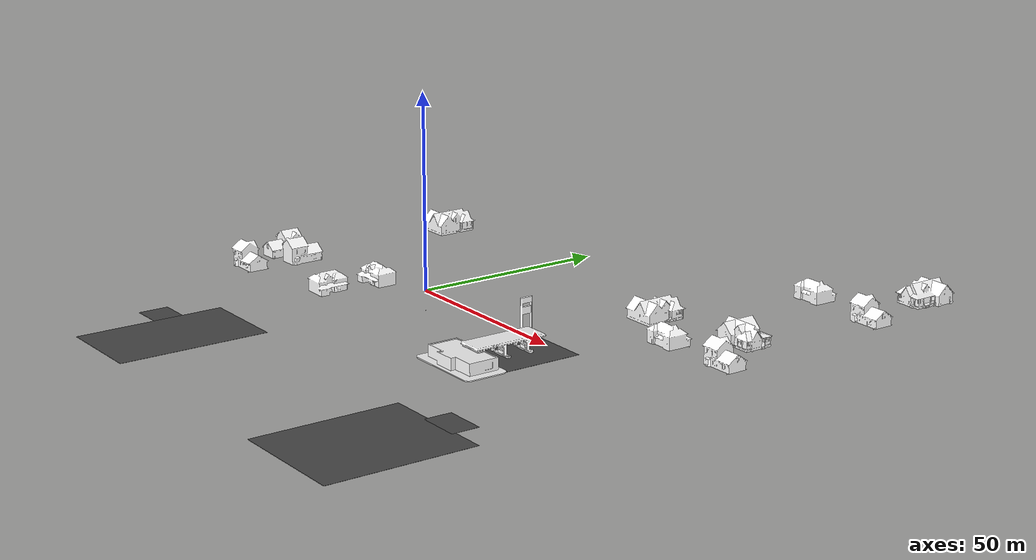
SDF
<sdf version="1.6">
 <world name="default">
  <plugin name="joy" filename="libJoyPlugin.so">
   <sticky_buttons>false</sticky_buttons>
   <dead_zone>0.05</dead_zone>
   <rate>60</rate>
   <accumulation_rate>1000</accumulation_rate>
  </plugin>
  <scene>
   <grid>false</grid>
   <origin_visual>false</origin_visual>
   <ambient>0.592 0.624 0.635 1</ambient>
   <sky><clouds><speed>12</speed></clouds></sky>
   <background>0.35 0.35 0.35 1.0</background>
  </scene>
  <physics name="default_physics" default="0" type="ode">
   <max_step_size>0.002</max_step_size>
   <real_time_factor>1</real_time_factor>
   <real_time_update_rate>0</real_time_update_rate>
  </physics>
  <spherical_coordinates>
   <surface_model>EARTH_WGS84</surface_model>
   <latitude_deg>0</latitude_deg>
   <longitude_deg>0</longitude_deg>
   <elevation>0</elevation>
   <heading_deg>0</heading_deg>
  </spherical_coordinates>
  <light type="directional" name="sun">
   <pose>0 0 1000 0 0 0</pose>
   <diffuse>0.8 0.8 0.8 1</diffuse>
   <specular>0.5 0.5 0.5 1</specular>
   <attenuation>
    <range>1000</range>
    <constant>0.9</constant>
    <linear>0.01</linear>
    <quadratic>0.001</quadratic>
   </attenuation>
   <direction>-0.5 0.1 -0.4</direction>
  </light>
  <model name="shaderbox">
   <pose>0 0 -5 0 0 0</pose>
   <static>true</static>
   <link name="link">
    <visual name="visual">
     <geometry><box><size>0.1 0.1 0.1</size></box></geometry>
     <material>
      <script><uri>file://media/materials/scripts/citysim.material</uri><name>CitySim/ShinyGrey</name></script>
     </material>
     <plugin name="bloom" filename="libBloomVisualPlugin.so"/>
     <plugin name="lensflare" filename="libLensFlareVisualPlugin.so"/>
    </visual>
   </link>
  </model>
  <include>
   <name>house_1_116</name>
   <pose>88.76
      81.72
      5.01
      0
      0
      1.57</pose>
   <uri>model://house_1</uri>
  </include>
  <include>
   <name>house_2_117</name>
   <pose>71.455
      61.92
      5.01
      0
      0
      0</pose>
   <uri>model://house_2</uri>
  </include>
  <include>
   <name>house_3_118</name>
   <pose>92.89
      60.76
      5.01
      0
      0
      0</pose>
   <uri>model://house_3</uri>
  </include>
  <include>
   <name>house_1_130</name>
   <pose>61.74
      22.76
      5.01
      0
      0
      -1.57</pose>
   <uri>model://house_1</uri>
  </include>
  <include>
   <name>house_1_131</name>
   <pose>86.62
      27.93
      5.01
      0
      0
      3.14</pose>
   <uri>model://house_1</uri>
  </include>
  <include>
   <name>house_3_132</name>
   <pose>96.43
      14.14
      5.01
      0
      0
      0</pose>
   <uri>model://house_3</uri>
  </include>
  <include>
   <name>house_2_135</name>
   <pose>76.71
      13.4
      5.01
      0
      0
      0</pose>
   <uri>model://house_2</uri>
  </include>
  <model name="gas_station_137">
   <static>true</static>
   <pose>61.88
    -30.82
    5.01
    0
    0
    3.14</pose>
   <link name="link">
    <collision name="collision">
     <geometry><mesh><uri>model://gas_station/meshes/gas_station.dae</uri></mesh></geometry>
    </collision>
    <visual name="visual">
     <geometry><mesh><uri>model://gas_station/meshes/gas_station.dae</uri></mesh></geometry>
     <material>
      <script>
       <uri>model://gas_station/materials/scripts</uri>
       <uri>model://gas_station/materials/textures</uri>
       <name>GasStation/Diffuse</name>
      </script>
      <ambient>1
          1
          1
          1</ambient>
     </material>
    </visual>
   </link>
  </model>
  <model name="asphalt_plane_138">
   <static>true</static>
   <pose>61.581
    -16.664
    5.01
    0
    0
    0</pose>
   <link name="link">
    <collision name="collision">
     <geometry><box><size>20
            20
            0.1</size></box></geometry>
    </collision>
    <visual name="visual">
     <geometry><box><size>20
            20
            0.05</size></box></geometry>
     <material>
      <script>
       <uri>model://asphalt_plane/materials/scripts</uri>
       <uri>model://asphalt_plane/materials/textures</uri>
       <name>vrc/asphalt</name>
      </script>
     </material>
    </visual>
   </link>
  </model>
  <model name="asphalt_plane_148">
   <static>true</static>
   <pose>88.62
    -72.49
    5.01
    0
    0
    0</pose>
   <link name="link">
    <collision name="collision">
     <geometry><box><size>29.378
            35.24
            0.1</size></box></geometry>
    </collision>
    <visual name="visual">
     <geometry><box><size>29.378
            35.24
            0.05</size></box></geometry>
     <material>
      <script>
       <uri>model://asphalt_plane/materials/scripts</uri>
       <uri>model://asphalt_plane/materials/textures</uri>
       <name>vrc/asphalt</name>
      </script>
     </material>
    </visual>
   </link>
  </model>
  <model name="asphalt_plane_149">
   <static>true</static>
   <pose>90.0
    -52.48
    5.01
    0
    0
    0</pose>
   <link name="link">
    <collision name="collision">
     <geometry><box><size>10.15
            6.61
            0.1</size></box></geometry>
    </collision>
    <visual name="visual">
     <geometry><box><size>10.15
            6.61
            0.05</size></box></geometry>
     <material>
      <script>
       <uri>model://asphalt_plane/materials/scripts</uri>
       <uri>model://asphalt_plane/materials/textures</uri>
       <name>vrc/asphalt</name>
      </script>
     </material>
    </visual>
   </link>
  </model>
  <include>
   <name>house_2_302</name>
   <pose>1.61
      -14.15
      5.01
      0
      0
      3.14</pose>
   <uri>model://house_2</uri>
  </include>
  <include>
   <name>house_2_303</name>
   <pose>-0.59
      -26.6
      5.01
      0
      0
      -1.57</pose>
   <uri>model://house_2</uri>
  </include>
  <model name="asphalt_plane_321">
   <static>true</static>
   <pose>7.4
    -72.69
    5.01
    0
    0
    0</pose>
   <link name="link">
    <collision name="collision">
     <geometry><box><size>22.248
            36.24
            0.1</size></box></geometry>
    </collision>
    <visual name="visual">
     <geometry><box><size>22.248
            36.24
            0.05</size></box></geometry>
     <material>
      <script>
       <uri>model://asphalt_plane/materials/scripts</uri>
       <uri>model://asphalt_plane/materials/textures</uri>
       <name>vrc/asphalt</name>
      </script>
     </material>
    </visual>
   </link>
  </model>
  <model name="asphalt_plane_322">
   <static>true</static>
   <pose>-7.51
    -67.99
    5.01
    0
    0
    0</pose>
   <link name="link">
    <collision name="collision">
     <geometry><box><size>7.63
            7.24
            0.1</size></box></geometry>
    </collision>
    <visual name="visual">
     <geometry><box><size>7.63
            7.24
            0.05</size></box></geometry>
     <material>
      <script>
       <uri>model://asphalt_plane/materials/scripts</uri>
       <uri>model://asphalt_plane/materials/textures</uri>
       <name>vrc/asphalt</name>
      </script>
     </material>
    </visual>
   </link>
  </model>
  <include>
   <name>house_1_411</name>
   <pose>-27.49
      25.344
      5.01
      0
      0
      -1.57</pose>
   <uri>model://house_1</uri>
  </include>
  <include>
   <name>house_3_421</name>
   <pose>-33.39
      -21.3
      5.01
      0
      0
      -1.57</pose>
   <uri>model://house_3</uri>
  </include>
  <include>
   <name>house_3_422</name>
   <pose>-28.126
      -32.93
      5.01
      0
      0
      0.0</pose>
   <uri>model://house_3</uri>
  </include>
  <include>
   <name>house_3_423</name>
   <pose>-25.739
      -19.38
      5.01
      0
      0
      1.57</pose>
   <uri>model://house_3</uri>
  </include>
 </world>
</sdf>

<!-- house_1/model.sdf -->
<sdf version="1.5">
  <model name="House 1">
    <static>true</static>
    <link name="link">
      <collision name="collision">
        <geometry>
          <mesh>
            <uri>model://house_1/meshes/house_1.dae</uri>
          </mesh>
        </geometry>
      </collision>
      <visual name="visual">
        <geometry>
          <mesh>
            <uri>model://house_1/meshes/house_1.dae</uri>
          </mesh>
        </geometry>
        <material>
          <script>
            <uri>model://house_1/materials/scripts</uri>
            <uri>model://house_1/materials/textures</uri>
            <name>House_1/Diffuse</name>
          </script>
          <shader type="normal_map_object_space">
            <normal_map>House_1_Normal.png</normal_map>
          </shader>
        </material>
      </visual>
    </link>
  </model>
</sdf>

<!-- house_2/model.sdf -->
<sdf version="1.5">
  <model name="House 2">
    <static>true</static>
    <link name="link">
      <collision name="collision">
        <geometry>
          <mesh>
            <uri>model://house_2/meshes/house_2.dae</uri>
          </mesh>
        </geometry>
      </collision>
      <visual name="visual">
        <geometry>
          <mesh>
            <uri>model://house_2/meshes/house_2.dae</uri>
          </mesh>
        </geometry>
        <material>
          <script>
            <uri>model://house_2/materials/scripts</uri>
            <uri>model://house_2/materials/textures</uri>
            <uri>model://house_1/materials/textures</uri>
            <name>House_2/Diffuse</name>
          </script>
          <shader type="normal_map_object_space">
            <normal_map>model://house_1/materials/textures/House_1_Normal.png</normal_map>
          </shader>
        </material>
      </visual>
    </link>
  </model>
</sdf>

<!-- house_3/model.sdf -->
<sdf version="1.5">
  <model name="House 3">
    <static>true</static>
    <link name="link">
      <collision name="collision">
        <geometry>
          <mesh>
            <uri>model://house_3/meshes/house_3.dae</uri>
          </mesh>
        </geometry>
      </collision>
      <visual name="visual">
        <geometry>
          <mesh>
            <uri>model://house_3/meshes/house_3.dae</uri>
          </mesh>
        </geometry>
        <material>
          <script>
            <uri>model://house_3/materials/scripts</uri>
            <uri>model://house_3/materials/textures</uri>
            <uri>model://house_1/materials/textures</uri>
            <name>House_3/Diffuse</name>
          </script>
          <shader type="normal_map_object_space">
            <normal_map>model://house_1/materials/textures/House_1_Normal.png</normal_map>
          </shader>
        </material>
      </visual>
    </link>
  </model>
</sdf>
